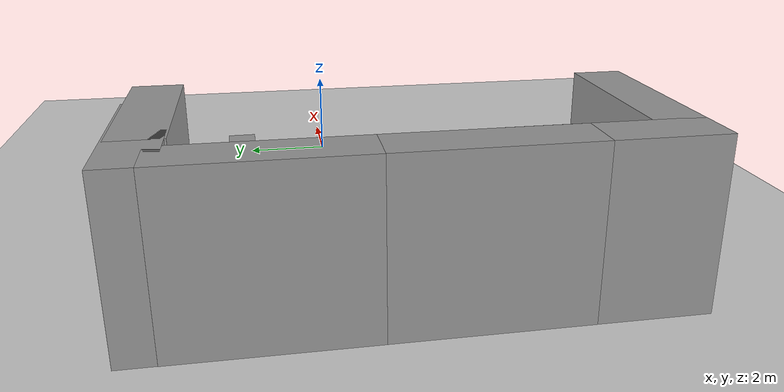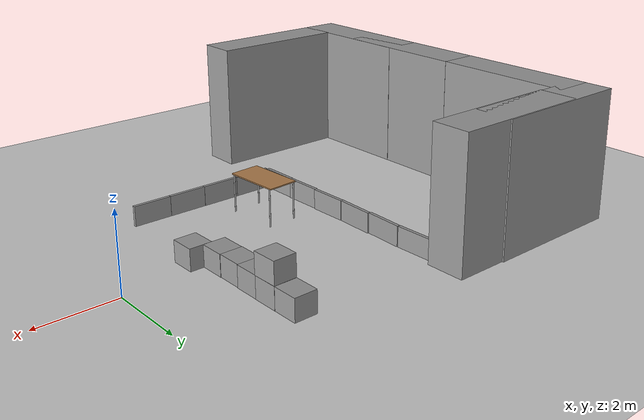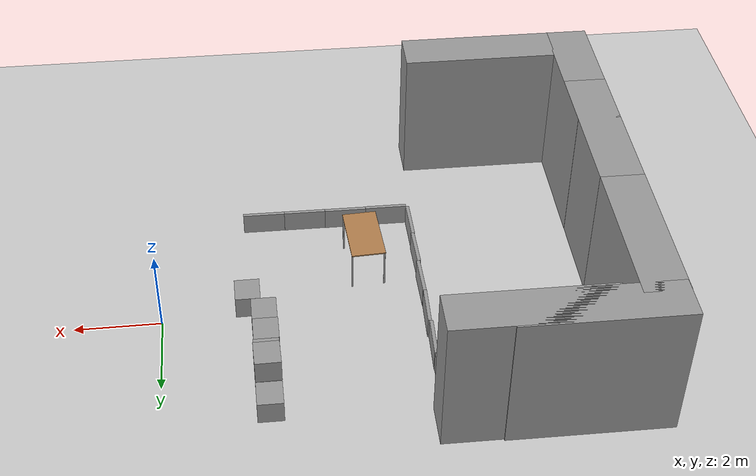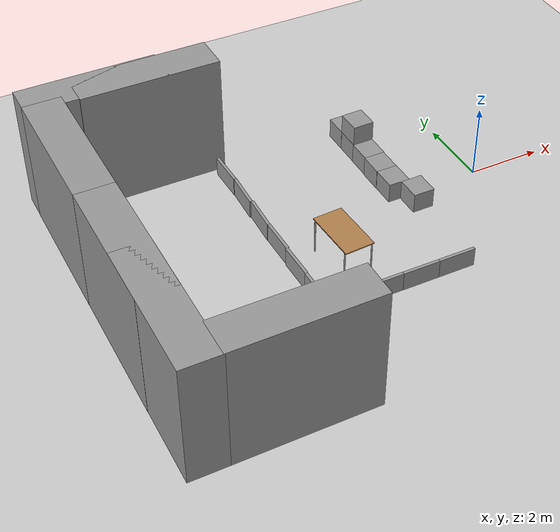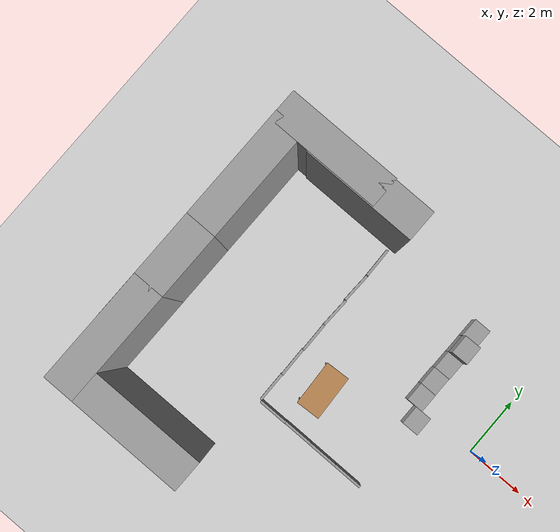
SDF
<sdf version="1.6">
 <world name="default">
  <model name="ground_plane">
   <static>1</static>
   <link name="link">
    <collision name="collision">
     <geometry><plane><normal>0 0 1</normal><size>100 100</size></plane></geometry>
     <surface>
      <contact><collide_bitmask>65535</collide_bitmask></contact>
      <friction><ode><mu>100</mu><mu2>50</mu2></ode></friction>
     </surface>
    </collision>
    <visual name="visual">
     <cast_shadows>0</cast_shadows>
     <geometry><plane><normal>0 0 1</normal><size>100 100</size></plane></geometry>
     <material>
      <script><uri>file://media/materials/scripts/gazebo.material</uri><name>Gazebo/Grey</name></script>
     </material>
    </visual>
   </link>
  </model>
  <model name="panel_0">
   <link name="link">
    <inertial>
     <mass>0.0428479</mass>
     <inertia>
      <ixx>0.00456249</ixx>
      <ixy>0</ixy>
      <ixz>0</ixz>
      <iyy>0.00101543</iyy>
      <iyz>0</iyz>
      <izz>0.00359426</izz>
     </inertia>
    </inertial>
    <pose>-0.996065 -0.479892 0.260289 0 -0 0</pose>
    <visual name="visual">
     <geometry><box><size>0.081299 1 0.527041</size></box></geometry>
     <material>
      <script><name>Gazebo/Grey</name><uri>file://media/materials/scripts/gazebo.material</uri></script>
      <emissive>0 0 0 1</emissive>
      <shader type="vertex"><normal_map>__default__</normal_map></shader>
      <ambient>0.3 0.3 0.3 1</ambient>
      <diffuse>0.7 0.7 0.7 1</diffuse>
      <specular>0.01 0.01 0.01 1</specular>
     </material>
    </visual>
    <collision name="collision">
     <geometry><box><size>0.081299 1 0.527041</size></box></geometry>
     <surface>
      <friction>
       <ode><mu>1</mu><mu2>1</mu2><fdir1>0 0 0</fdir1><slip1>0</slip1><slip2>0</slip2></ode>
       <torsional>
        <coefficient>1</coefficient>
        <patch_radius>0</patch_radius>
        <surface_radius>0</surface_radius>
        <use_patch_radius>1</use_patch_radius>
        <ode><slip>0</slip></ode>
       </torsional>
      </friction>
      <bounce><restitution_coefficient>0</restitution_coefficient><threshold>1e+06</threshold></bounce>
      <contact>
       <collide_without_contact>0</collide_without_contact>
       <collide_without_contact_bitmask>1</collide_without_contact_bitmask>
       <collide_bitmask>1</collide_bitmask>
       <ode>
        <soft_cfm>0</soft_cfm>
        <soft_erp>0.2</soft_erp>
        <kp>1e+13</kp>
        <kd>1</kd>
        <max_vel>0.01</max_vel>
        <min_depth>0</min_depth>
       </ode>
       <bullet>
        <split_impulse>1</split_impulse>
        <split_impulse_penetration_threshold>-0.01</split_impulse_penetration_threshold>
        <soft_cfm>0</soft_cfm>
        <soft_erp>0.2</soft_erp>
        <kp>1e+13</kp>
        <kd>1</kd>
       </bullet>
      </contact>
     </surface>
    </collision>
   </link>
   <static>0</static>
   <allow_auto_disable>0</allow_auto_disable>
   <pose>-5.05418 -0.988597 0.003222 -1e-06 0 0.022855</pose>
  </model>
  <model name="panel">
   <link name="link">
    <inertial>
     <mass>0.0428479</mass>
     <inertia>
      <ixx>0.00456249</ixx>
      <ixy>0</ixy>
      <ixz>0</ixz>
      <iyy>0.00101543</iyy>
      <iyz>0</iyz>
      <izz>0.00359426</izz>
     </inertia>
    </inertial>
    <pose>-0.996065 -0.479892 0.260289 0 -0 0</pose>
    <visual name="visual">
     <geometry><box><size>0.081299 1 0.527041</size></box></geometry>
     <material>
      <script><name>Gazebo/Grey</name><uri>file://media/materials/scripts/gazebo.material</uri></script>
      <emissive>0 0 0 1</emissive>
      <shader type="vertex"><normal_map>__default__</normal_map></shader>
      <ambient>0.3 0.3 0.3 1</ambient>
      <diffuse>0.7 0.7 0.7 1</diffuse>
      <specular>0.01 0.01 0.01 1</specular>
     </material>
    </visual>
    <collision name="collision">
     <geometry><box><size>0.081299 1 0.527041</size></box></geometry>
     <surface>
      <friction>
       <ode><mu>1</mu><mu2>1</mu2><fdir1>0 0 0</fdir1><slip1>0</slip1><slip2>0</slip2></ode>
       <torsional>
        <coefficient>1</coefficient>
        <patch_radius>0</patch_radius>
        <surface_radius>0</surface_radius>
        <use_patch_radius>1</use_patch_radius>
        <ode><slip>0</slip></ode>
       </torsional>
      </friction>
      <bounce><restitution_coefficient>0</restitution_coefficient><threshold>1e+06</threshold></bounce>
      <contact>
       <collide_without_contact>0</collide_without_contact>
       <collide_without_contact_bitmask>1</collide_without_contact_bitmask>
       <collide_bitmask>1</collide_bitmask>
       <ode>
        <soft_cfm>0</soft_cfm>
        <soft_erp>0.2</soft_erp>
        <kp>1e+13</kp>
        <kd>1</kd>
        <max_vel>0.01</max_vel>
        <min_depth>0</min_depth>
       </ode>
       <bullet>
        <split_impulse>1</split_impulse>
        <split_impulse_penetration_threshold>-0.01</split_impulse_penetration_threshold>
        <soft_cfm>0</soft_cfm>
        <soft_erp>0.2</soft_erp>
        <kp>1e+13</kp>
        <kd>1</kd>
       </bullet>
      </contact>
     </surface>
    </collision>
   </link>
   <static>0</static>
   <allow_auto_disable>0</allow_auto_disable>
   <pose>-5.04883 0.006609 0.003227 -4e-06 -0 0.017153</pose>
  </model>
  <model name="panel_1">
   <link name="link">
    <inertial>
     <mass>0.0428479</mass>
     <inertia>
      <ixx>0.00456249</ixx>
      <ixy>0</ixy>
      <ixz>0</ixz>
      <iyy>0.00101543</iyy>
      <iyz>0</iyz>
      <izz>0.00359426</izz>
     </inertia>
    </inertial>
    <pose>-0.996065 -0.479892 0.260289 0 -0 0</pose>
    <visual name="visual">
     <geometry><box><size>0.081299 1 0.527041</size></box></geometry>
     <material>
      <script><name>Gazebo/Grey</name><uri>file://media/materials/scripts/gazebo.material</uri></script>
      <emissive>0 0 0 1</emissive>
      <shader type="vertex"><normal_map>__default__</normal_map></shader>
      <ambient>0.3 0.3 0.3 1</ambient>
      <diffuse>0.7 0.7 0.7 1</diffuse>
      <specular>0.01 0.01 0.01 1</specular>
     </material>
    </visual>
    <collision name="collision">
     <geometry><box><size>0.081299 1 0.527041</size></box></geometry>
     <surface>
      <friction>
       <ode><mu>1</mu><mu2>1</mu2><fdir1>0 0 0</fdir1><slip1>0</slip1><slip2>0</slip2></ode>
       <torsional>
        <coefficient>1</coefficient>
        <patch_radius>0</patch_radius>
        <surface_radius>0</surface_radius>
        <use_patch_radius>1</use_patch_radius>
        <ode><slip>0</slip></ode>
       </torsional>
      </friction>
      <bounce><restitution_coefficient>0</restitution_coefficient><threshold>1e+06</threshold></bounce>
      <contact>
       <collide_without_contact>0</collide_without_contact>
       <collide_without_contact_bitmask>1</collide_without_contact_bitmask>
       <collide_bitmask>1</collide_bitmask>
       <ode>
        <soft_cfm>0</soft_cfm>
        <soft_erp>0.2</soft_erp>
        <kp>1e+13</kp>
        <kd>1</kd>
        <max_vel>0.01</max_vel>
        <min_depth>0</min_depth>
       </ode>
       <bullet>
        <split_impulse>1</split_impulse>
        <split_impulse_penetration_threshold>-0.01</split_impulse_penetration_threshold>
        <soft_cfm>0</soft_cfm>
        <soft_erp>0.2</soft_erp>
        <kp>1e+13</kp>
        <kd>1</kd>
       </bullet>
      </contact>
     </surface>
    </collision>
   </link>
   <static>0</static>
   <allow_auto_disable>0</allow_auto_disable>
   <pose>-5.02835 0.9633 0.003231 0 0 -0.027927</pose>
  </model>
  <model name="panel_2">
   <link name="link">
    <inertial>
     <mass>0.0428479</mass>
     <inertia>
      <ixx>0.00456249</ixx>
      <ixy>0</ixy>
      <ixz>0</ixz>
      <iyy>0.00101543</iyy>
      <iyz>0</iyz>
      <izz>0.00359426</izz>
     </inertia>
    </inertial>
    <pose>-0.996065 -0.479892 0.260289 0 -0 0</pose>
    <visual name="visual">
     <geometry><box><size>0.081299 1 0.527041</size></box></geometry>
     <material>
      <script><name>Gazebo/Grey</name><uri>file://media/materials/scripts/gazebo.material</uri></script>
      <emissive>0 0 0 1</emissive>
      <shader type="vertex"><normal_map>__default__</normal_map></shader>
      <ambient>0.3 0.3 0.3 1</ambient>
      <diffuse>0.7 0.7 0.7 1</diffuse>
      <specular>0.01 0.01 0.01 1</specular>
     </material>
    </visual>
    <collision name="collision">
     <geometry><box><size>0.081299 1 0.527041</size></box></geometry>
     <surface>
      <friction>
       <ode><mu>1</mu><mu2>1</mu2><fdir1>0 0 0</fdir1><slip1>0</slip1><slip2>0</slip2></ode>
       <torsional>
        <coefficient>1</coefficient>
        <patch_radius>0</patch_radius>
        <surface_radius>0</surface_radius>
        <use_patch_radius>1</use_patch_radius>
        <ode><slip>0</slip></ode>
       </torsional>
      </friction>
      <bounce><restitution_coefficient>0</restitution_coefficient><threshold>1e+06</threshold></bounce>
      <contact>
       <collide_without_contact>0</collide_without_contact>
       <collide_without_contact_bitmask>1</collide_without_contact_bitmask>
       <collide_bitmask>1</collide_bitmask>
       <ode>
        <soft_cfm>0</soft_cfm>
        <soft_erp>0.2</soft_erp>
        <kp>1e+13</kp>
        <kd>1</kd>
        <max_vel>0.01</max_vel>
        <min_depth>0</min_depth>
       </ode>
       <bullet>
        <split_impulse>1</split_impulse>
        <split_impulse_penetration_threshold>-0.01</split_impulse_penetration_threshold>
        <soft_cfm>0</soft_cfm>
        <soft_erp>0.2</soft_erp>
        <kp>1e+13</kp>
        <kd>1</kd>
       </bullet>
      </contact>
     </surface>
    </collision>
   </link>
   <static>0</static>
   <allow_auto_disable>0</allow_auto_disable>
   <pose>-5.0306 1.96587 0.003233 0 -1e-06 -0.029752</pose>
  </model>
  <model name="panel_3">
   <link name="link">
    <inertial>
     <mass>0.0428479</mass>
     <inertia>
      <ixx>0.00456249</ixx>
      <ixy>0</ixy>
      <ixz>0</ixz>
      <iyy>0.00101543</iyy>
      <iyz>0</iyz>
      <izz>0.00359426</izz>
     </inertia>
    </inertial>
    <pose>-0.996065 -0.479892 0.260289 0 -0 0</pose>
    <visual name="visual">
     <geometry><box><size>0.081299 1 0.527041</size></box></geometry>
     <material>
      <script><name>Gazebo/Grey</name><uri>file://media/materials/scripts/gazebo.material</uri></script>
      <emissive>0 0 0 1</emissive>
      <shader type="vertex"><normal_map>__default__</normal_map></shader>
      <ambient>0.3 0.3 0.3 1</ambient>
      <diffuse>0.7 0.7 0.7 1</diffuse>
      <specular>0.01 0.01 0.01 1</specular>
     </material>
    </visual>
    <collision name="collision">
     <geometry><box><size>0.081299 1 0.527041</size></box></geometry>
     <surface>
      <friction>
       <ode><mu>1</mu><mu2>1</mu2><fdir1>0 0 0</fdir1><slip1>0</slip1><slip2>0</slip2></ode>
       <torsional>
        <coefficient>1</coefficient>
        <patch_radius>0</patch_radius>
        <surface_radius>0</surface_radius>
        <use_patch_radius>1</use_patch_radius>
        <ode><slip>0</slip></ode>
       </torsional>
      </friction>
      <bounce><restitution_coefficient>0</restitution_coefficient><threshold>1e+06</threshold></bounce>
      <contact>
       <collide_without_contact>0</collide_without_contact>
       <collide_without_contact_bitmask>1</collide_without_contact_bitmask>
       <collide_bitmask>1</collide_bitmask>
       <ode>
        <soft_cfm>0</soft_cfm>
        <soft_erp>0.2</soft_erp>
        <kp>1e+13</kp>
        <kd>1</kd>
        <max_vel>0.01</max_vel>
        <min_depth>0</min_depth>
       </ode>
       <bullet>
        <split_impulse>1</split_impulse>
        <split_impulse_penetration_threshold>-0.01</split_impulse_penetration_threshold>
        <soft_cfm>0</soft_cfm>
        <soft_erp>0.2</soft_erp>
        <kp>1e+13</kp>
        <kd>1</kd>
       </bullet>
      </contact>
     </surface>
    </collision>
   </link>
   <static>0</static>
   <allow_auto_disable>0</allow_auto_disable>
   <pose>-5.0627 3.03614 0.003232 0 -0 0.026347</pose>
  </model>
  <model name="panel_4">
   <link name="link">
    <inertial>
     <mass>0.0428479</mass>
     <inertia>
      <ixx>0.00456249</ixx>
      <ixy>0</ixy>
      <ixz>0</ixz>
      <iyy>0.00101543</iyy>
      <iyz>0</iyz>
      <izz>0.00359426</izz>
     </inertia>
    </inertial>
    <pose>-0.996065 -0.479892 0.260289 0 -0 0</pose>
    <visual name="visual">
     <geometry><box><size>0.081299 1 0.527041</size></box></geometry>
     <material>
      <script><name>Gazebo/Grey</name><uri>file://media/materials/scripts/gazebo.material</uri></script>
      <emissive>0 0 0 1</emissive>
      <shader type="vertex"><normal_map>__default__</normal_map></shader>
      <ambient>0.3 0.3 0.3 1</ambient>
      <diffuse>0.7 0.7 0.7 1</diffuse>
      <specular>0.01 0.01 0.01 1</specular>
     </material>
    </visual>
    <collision name="collision">
     <geometry><box><size>0.081299 1 0.527041</size></box></geometry>
     <surface>
      <friction>
       <ode><mu>1</mu><mu2>1</mu2><fdir1>0 0 0</fdir1><slip1>0</slip1><slip2>0</slip2></ode>
       <torsional>
        <coefficient>1</coefficient>
        <patch_radius>0</patch_radius>
        <surface_radius>0</surface_radius>
        <use_patch_radius>1</use_patch_radius>
        <ode><slip>0</slip></ode>
       </torsional>
      </friction>
      <bounce><restitution_coefficient>0</restitution_coefficient><threshold>1e+06</threshold></bounce>
      <contact>
       <collide_without_contact>0</collide_without_contact>
       <collide_without_contact_bitmask>1</collide_without_contact_bitmask>
       <collide_bitmask>1</collide_bitmask>
       <ode>
        <soft_cfm>0</soft_cfm>
        <soft_erp>0.2</soft_erp>
        <kp>1e+13</kp>
        <kd>1</kd>
        <max_vel>0.01</max_vel>
        <min_depth>0</min_depth>
       </ode>
       <bullet>
        <split_impulse>1</split_impulse>
        <split_impulse_penetration_threshold>-0.01</split_impulse_penetration_threshold>
        <soft_cfm>0</soft_cfm>
        <soft_erp>0.2</soft_erp>
        <kp>1e+13</kp>
        <kd>1</kd>
       </bullet>
      </contact>
     </surface>
    </collision>
   </link>
   <static>0</static>
   <allow_auto_disable>0</allow_auto_disable>
   <pose>-5.04525 -1.99765 0.003231 4e-06 0 0.014171</pose>
  </model>
  <model name="panel_11">
   <link name="link">
    <inertial>
     <mass>0.0428479</mass>
     <inertia>
      <ixx>0.00456249</ixx>
      <ixy>0</ixy>
      <ixz>0</ixz>
      <iyy>0.00101543</iyy>
      <iyz>0</iyz>
      <izz>0.00359426</izz>
     </inertia>
    </inertial>
    <pose>-0.996065 -0.479892 0.260289 0 -0 0</pose>
    <visual name="visual">
     <geometry><box><size>0.081299 1 0.527041</size></box></geometry>
     <material>
      <script><name>Gazebo/Grey</name><uri>file://media/materials/scripts/gazebo.material</uri></script>
      <emissive>0 0 0 1</emissive>
      <shader type="vertex"><normal_map>__default__</normal_map></shader>
      <ambient>0.3 0.3 0.3 1</ambient>
      <diffuse>0.7 0.7 0.7 1</diffuse>
      <specular>0.01 0.01 0.01 1</specular>
     </material>
    </visual>
    <collision name="collision">
     <geometry><box><size>0.081299 1 0.527041</size></box></geometry>
     <surface>
      <friction>
       <ode><mu>1</mu><mu2>1</mu2><fdir1>0 0 0</fdir1><slip1>0</slip1><slip2>0</slip2></ode>
       <torsional>
        <coefficient>1</coefficient>
        <patch_radius>0</patch_radius>
        <surface_radius>0</surface_radius>
        <use_patch_radius>1</use_patch_radius>
        <ode><slip>0</slip></ode>
       </torsional>
      </friction>
      <bounce><restitution_coefficient>0</restitution_coefficient><threshold>1e+06</threshold></bounce>
      <contact>
       <collide_without_contact>0</collide_without_contact>
       <collide_without_contact_bitmask>1</collide_without_contact_bitmask>
       <collide_bitmask>1</collide_bitmask>
       <ode>
        <soft_cfm>0</soft_cfm>
        <soft_erp>0.2</soft_erp>
        <kp>1e+13</kp>
        <kd>1</kd>
        <max_vel>0.01</max_vel>
        <min_depth>0</min_depth>
       </ode>
       <bullet>
        <split_impulse>1</split_impulse>
        <split_impulse_penetration_threshold>-0.01</split_impulse_penetration_threshold>
        <soft_cfm>0</soft_cfm>
        <soft_erp>0.2</soft_erp>
        <kp>1e+13</kp>
        <kd>1</kd>
       </bullet>
      </contact>
     </surface>
    </collision>
   </link>
   <static>0</static>
   <allow_auto_disable>0</allow_auto_disable>
   <pose>-4.97363 -2.03274 0.003222 -1e-05 -0 1.5692</pose>
  </model>
  <model name="panel_12">
   <link name="link">
    <inertial>
     <mass>0.0428479</mass>
     <inertia>
      <ixx>0.00456249</ixx>
      <ixy>0</ixy>
      <ixz>0</ixz>
      <iyy>0.00101543</iyy>
      <iyz>0</iyz>
      <izz>0.00359426</izz>
     </inertia>
    </inertial>
    <pose>-0.996065 -0.479892 0.260289 0 -0 0</pose>
    <visual name="visual">
     <geometry><box><size>0.081299 1 0.527041</size></box></geometry>
     <material>
      <script><name>Gazebo/Grey</name><uri>file://media/materials/scripts/gazebo.material</uri></script>
      <emissive>0 0 0 1</emissive>
      <shader type="vertex"><normal_map>__default__</normal_map></shader>
      <ambient>0.3 0.3 0.3 1</ambient>
      <diffuse>0.7 0.7 0.7 1</diffuse>
      <specular>0.01 0.01 0.01 1</specular>
     </material>
    </visual>
    <collision name="collision">
     <geometry><box><size>0.081299 1 0.527041</size></box></geometry>
     <surface>
      <friction>
       <ode><mu>1</mu><mu2>1</mu2><fdir1>0 0 0</fdir1><slip1>0</slip1><slip2>0</slip2></ode>
       <torsional>
        <coefficient>1</coefficient>
        <patch_radius>0</patch_radius>
        <surface_radius>0</surface_radius>
        <use_patch_radius>1</use_patch_radius>
        <ode><slip>0</slip></ode>
       </torsional>
      </friction>
      <bounce><restitution_coefficient>0</restitution_coefficient><threshold>1e+06</threshold></bounce>
      <contact>
       <collide_without_contact>0</collide_without_contact>
       <collide_without_contact_bitmask>1</collide_without_contact_bitmask>
       <collide_bitmask>1</collide_bitmask>
       <ode>
        <soft_cfm>0</soft_cfm>
        <soft_erp>0.2</soft_erp>
        <kp>1e+13</kp>
        <kd>1</kd>
        <max_vel>0.01</max_vel>
        <min_depth>0</min_depth>
       </ode>
       <bullet>
        <split_impulse>1</split_impulse>
        <split_impulse_penetration_threshold>-0.01</split_impulse_penetration_threshold>
        <soft_cfm>0</soft_cfm>
        <soft_erp>0.2</soft_erp>
        <kp>1e+13</kp>
        <kd>1</kd>
       </bullet>
      </contact>
     </surface>
    </collision>
   </link>
   <static>0</static>
   <allow_auto_disable>0</allow_auto_disable>
   <pose>-5.97519 -2.04045 0.003232 0 -1e-06 1.56998</pose>
  </model>
  <model name="wall_4_1_3_clone">
   <link name="link">
    <inertial>
     <mass>12.3337</mass>
     <inertia><ixx>12.5329</ixx><ixy>0</ixy><ixz>0</ixz><iyy>25.4731</iyy><iyz>0</iyz><izz>14.9958</izz></inertia>
    </inertial>
    <pose>-2.9941 -0.388092 1.21174 0 -0 0</pose>
    <visual name="visual">
     <geometry><box><size>3.68647 1 3.34571</size></box></geometry>
     <material>
      <script><name>Gazebo/Grey</name><uri>file://media/materials/scripts/gazebo.material</uri></script>
     </material>
    </visual>
    <collision name="collision">
     <geometry><box><size>3.68647 1 3.34571</size></box></geometry>
     <surface>
      <friction>
       <ode><mu>1</mu><mu2>1</mu2><fdir1>0 0 0</fdir1><slip1>0</slip1><slip2>0</slip2></ode>
       <torsional>
        <coefficient>1</coefficient>
        <patch_radius>0</patch_radius>
        <surface_radius>0</surface_radius>
        <use_patch_radius>1</use_patch_radius>
        <ode><slip>0</slip></ode>
       </torsional>
      </friction>
      <bounce><restitution_coefficient>0</restitution_coefficient><threshold>1e+06</threshold></bounce>
      <contact>
       <collide_without_contact>0</collide_without_contact>
       <collide_without_contact_bitmask>1</collide_without_contact_bitmask>
       <collide_bitmask>1</collide_bitmask>
       <ode>
        <soft_cfm>0</soft_cfm>
        <soft_erp>0.2</soft_erp>
        <kp>1e+13</kp>
        <kd>1</kd>
        <max_vel>0.01</max_vel>
        <min_depth>0</min_depth>
       </ode>
       <bullet>
        <split_impulse>1</split_impulse>
        <split_impulse_penetration_threshold>-0.01</split_impulse_penetration_threshold>
        <soft_cfm>0</soft_cfm>
        <soft_erp>0.2</soft_erp>
        <kp>1e+13</kp>
        <kd>1</kd>
       </bullet>
      </contact>
     </surface>
    </collision>
   </link>
   <static>1</static>
   <allow_auto_disable>0</allow_auto_disable>
   <pose>-4.65872 4.06004 0.5 0 -0 0</pose>
  </model>
  <model name="wall_4_1_3_clone_0">
   <link name="link">
    <inertial>
     <mass>12.3337</mass>
     <inertia><ixx>12.5329</ixx><ixy>0</ixy><ixz>0</ixz><iyy>25.4731</iyy><iyz>0</iyz><izz>14.9958</izz></inertia>
    </inertial>
    <pose>-2.9941 -0.388092 1.21174 0 -0 0</pose>
    <visual name="visual">
     <geometry><box><size>3.68647 1 3.34571</size></box></geometry>
     <material>
      <script><name>Gazebo/Grey</name><uri>file://media/materials/scripts/gazebo.material</uri></script>
     </material>
    </visual>
    <collision name="collision">
     <geometry><box><size>3.68647 1 3.34571</size></box></geometry>
     <surface>
      <friction>
       <ode><mu>1</mu><mu2>1</mu2><fdir1>0 0 0</fdir1><slip1>0</slip1><slip2>0</slip2></ode>
       <torsional>
        <coefficient>1</coefficient>
        <patch_radius>0</patch_radius>
        <surface_radius>0</surface_radius>
        <use_patch_radius>1</use_patch_radius>
        <ode><slip>0</slip></ode>
       </torsional>
      </friction>
      <bounce><restitution_coefficient>0</restitution_coefficient><threshold>1e+06</threshold></bounce>
      <contact>
       <collide_without_contact>0</collide_without_contact>
       <collide_without_contact_bitmask>1</collide_without_contact_bitmask>
       <collide_bitmask>1</collide_bitmask>
       <ode>
        <soft_cfm>0</soft_cfm>
        <soft_erp>0.2</soft_erp>
        <kp>1e+13</kp>
        <kd>1</kd>
        <max_vel>0.01</max_vel>
        <min_depth>0</min_depth>
       </ode>
       <bullet>
        <split_impulse>1</split_impulse>
        <split_impulse_penetration_threshold>-0.01</split_impulse_penetration_threshold>
        <soft_cfm>0</soft_cfm>
        <soft_erp>0.2</soft_erp>
        <kp>1e+13</kp>
        <kd>1</kd>
       </bullet>
      </contact>
     </surface>
    </collision>
   </link>
   <static>1</static>
   <allow_auto_disable>0</allow_auto_disable>
   <pose>-5.05797 -5.12167 0.5 0 -0 0</pose>
  </model>
  <model name="wall_4_1_3_clone_2">
   <link name="link">
    <inertial>
     <mass>12.3337</mass>
     <inertia><ixx>12.5329</ixx><ixy>0</ixy><ixz>0</ixz><iyy>25.4731</iyy><iyz>0</iyz><izz>14.9958</izz></inertia>
    </inertial>
    <pose>-2.9941 -0.388092 1.21174 0 -0 0</pose>
    <visual name="visual">
     <geometry><box><size>3.68647 1 3.34571</size></box></geometry>
     <material>
      <script><name>Gazebo/Grey</name><uri>file://media/materials/scripts/gazebo.material</uri></script>
     </material>
    </visual>
    <collision name="collision">
     <geometry><box><size>3.68647 1 3.34571</size></box></geometry>
     <surface>
      <friction>
       <ode><mu>1</mu><mu2>1</mu2><fdir1>0 0 0</fdir1><slip1>0</slip1><slip2>0</slip2></ode>
       <torsional>
        <coefficient>1</coefficient>
        <patch_radius>0</patch_radius>
        <surface_radius>0</surface_radius>
        <use_patch_radius>1</use_patch_radius>
        <ode><slip>0</slip></ode>
       </torsional>
      </friction>
      <bounce><restitution_coefficient>0</restitution_coefficient><threshold>1e+06</threshold></bounce>
      <contact>
       <collide_without_contact>0</collide_without_contact>
       <collide_without_contact_bitmask>1</collide_without_contact_bitmask>
       <collide_bitmask>1</collide_bitmask>
       <ode>
        <soft_cfm>0</soft_cfm>
        <soft_erp>0.2</soft_erp>
        <kp>1e+13</kp>
        <kd>1</kd>
        <max_vel>0.01</max_vel>
        <min_depth>0</min_depth>
       </ode>
       <bullet>
        <split_impulse>1</split_impulse>
        <split_impulse_penetration_threshold>-0.01</split_impulse_penetration_threshold>
        <soft_cfm>0</soft_cfm>
        <soft_erp>0.2</soft_erp>
        <kp>1e+13</kp>
        <kd>1</kd>
       </bullet>
      </contact>
     </surface>
    </collision>
   </link>
   <static>1</static>
   <allow_auto_disable>0</allow_auto_disable>
   <pose>-10.7382 4.65294 0.5 0 -0 1.56894</pose>
  </model>
  <model name="wall_4_1_3_clone_2_clone">
   <link name="link">
    <inertial>
     <mass>12.3337</mass>
     <inertia><ixx>12.5329</ixx><ixy>0</ixy><ixz>0</ixz><iyy>25.4731</iyy><iyz>0</iyz><izz>14.9958</izz></inertia>
    </inertial>
    <pose>-2.9941 -0.388092 1.21174 0 -0 0</pose>
    <visual name="visual">
     <geometry><box><size>3.68647 1 3.34571</size></box></geometry>
     <material>
      <script><name>Gazebo/Grey</name><uri>file://media/materials/scripts/gazebo.material</uri></script>
     </material>
    </visual>
    <collision name="collision">
     <geometry><box><size>3.68647 1 3.34571</size></box></geometry>
     <surface>
      <friction>
       <ode><mu>1</mu><mu2>1</mu2><fdir1>0 0 0</fdir1><slip1>0</slip1><slip2>0</slip2></ode>
       <torsional>
        <coefficient>1</coefficient>
        <patch_radius>0</patch_radius>
        <surface_radius>0</surface_radius>
        <use_patch_radius>1</use_patch_radius>
        <ode><slip>0</slip></ode>
       </torsional>
      </friction>
      <bounce><restitution_coefficient>0</restitution_coefficient><threshold>1e+06</threshold></bounce>
      <contact>
       <collide_without_contact>0</collide_without_contact>
       <collide_without_contact_bitmask>1</collide_without_contact_bitmask>
       <collide_bitmask>1</collide_bitmask>
       <ode>
        <soft_cfm>0</soft_cfm>
        <soft_erp>0.2</soft_erp>
        <kp>1e+13</kp>
        <kd>1</kd>
        <max_vel>0.01</max_vel>
        <min_depth>0</min_depth>
       </ode>
       <bullet>
        <split_impulse>1</split_impulse>
        <split_impulse_penetration_threshold>-0.01</split_impulse_penetration_threshold>
        <soft_cfm>0</soft_cfm>
        <soft_erp>0.2</soft_erp>
        <kp>1e+13</kp>
        <kd>1</kd>
       </bullet>
      </contact>
     </surface>
    </collision>
   </link>
   <static>1</static>
   <allow_auto_disable>0</allow_auto_disable>
   <pose>-10.743 0.966495 0.5 0 -0 1.56894</pose>
  </model>
  <model name="wall_4_1_3_clone_2_clone_0">
   <link name="link">
    <inertial>
     <mass>12.3337</mass>
     <inertia><ixx>12.5329</ixx><ixy>0</ixy><ixz>0</ixz><iyy>25.4731</iyy><iyz>0</iyz><izz>14.9958</izz></inertia>
    </inertial>
    <pose>-2.9941 -0.388092 1.21174 0 -0 0</pose>
    <visual name="visual">
     <geometry><box><size>3.68647 1 3.34571</size></box></geometry>
     <material>
      <script><name>Gazebo/Grey</name><uri>file://media/materials/scripts/gazebo.material</uri></script>
     </material>
    </visual>
    <collision name="collision">
     <geometry><box><size>3.68647 1 3.34571</size></box></geometry>
     <surface>
      <friction>
       <ode><mu>1</mu><mu2>1</mu2><fdir1>0 0 0</fdir1><slip1>0</slip1><slip2>0</slip2></ode>
       <torsional>
        <coefficient>1</coefficient>
        <patch_radius>0</patch_radius>
        <surface_radius>0</surface_radius>
        <use_patch_radius>1</use_patch_radius>
        <ode><slip>0</slip></ode>
       </torsional>
      </friction>
      <bounce><restitution_coefficient>0</restitution_coefficient><threshold>1e+06</threshold></bounce>
      <contact>
       <collide_without_contact>0</collide_without_contact>
       <collide_without_contact_bitmask>1</collide_without_contact_bitmask>
       <collide_bitmask>1</collide_bitmask>
       <ode>
        <soft_cfm>0</soft_cfm>
        <soft_erp>0.2</soft_erp>
        <kp>1e+13</kp>
        <kd>1</kd>
        <max_vel>0.01</max_vel>
        <min_depth>0</min_depth>
       </ode>
       <bullet>
        <split_impulse>1</split_impulse>
        <split_impulse_penetration_threshold>-0.01</split_impulse_penetration_threshold>
        <soft_cfm>0</soft_cfm>
        <soft_erp>0.2</soft_erp>
        <kp>1e+13</kp>
        <kd>1</kd>
       </bullet>
      </contact>
     </surface>
    </collision>
   </link>
   <static>1</static>
   <allow_auto_disable>0</allow_auto_disable>
   <pose>-10.7437 -1.1722 0.5 0 -0 1.56894</pose>
  </model>
  <model name="panel_14_clone_1_clone_clone_6">
   <link name="link">
    <inertial>
     <mass>0.0428479</mass>
     <inertia>
      <ixx>0.00456249</ixx>
      <ixy>0</ixy>
      <ixz>0</ixz>
      <iyy>0.00101543</iyy>
      <iyz>0</iyz>
      <izz>0.00359426</izz>
     </inertia>
    </inertial>
    <pose>-0.996065 -0.479892 0.260289 0 -0 0</pose>
    <visual name="visual">
     <geometry><box><size>0.081299 1 0.527041</size></box></geometry>
     <material>
      <script><name>Gazebo/Grey</name><uri>file://media/materials/scripts/gazebo.material</uri></script>
      <emissive>0 0 0 1</emissive>
      <shader type="vertex"><normal_map>__default__</normal_map></shader>
      <ambient>0.3 0.3 0.3 1</ambient>
      <diffuse>0.7 0.7 0.7 1</diffuse>
      <specular>0.01 0.01 0.01 1</specular>
     </material>
    </visual>
    <collision name="collision">
     <geometry><box><size>0.081299 1 0.527041</size></box></geometry>
     <surface>
      <friction>
       <ode><mu>1</mu><mu2>1</mu2><fdir1>0 0 0</fdir1><slip1>0</slip1><slip2>0</slip2></ode>
       <torsional>
        <coefficient>1</coefficient>
        <patch_radius>0</patch_radius>
        <surface_radius>0</surface_radius>
        <use_patch_radius>1</use_patch_radius>
        <ode><slip>0</slip></ode>
       </torsional>
      </friction>
      <bounce><restitution_coefficient>0</restitution_coefficient><threshold>1e+06</threshold></bounce>
      <contact>
       <collide_without_contact>0</collide_without_contact>
       <collide_without_contact_bitmask>1</collide_without_contact_bitmask>
       <collide_bitmask>1</collide_bitmask>
       <ode>
        <soft_cfm>0</soft_cfm>
        <soft_erp>0.2</soft_erp>
        <kp>1e+13</kp>
        <kd>1</kd>
        <max_vel>0.01</max_vel>
        <min_depth>0</min_depth>
       </ode>
       <bullet>
        <split_impulse>1</split_impulse>
        <split_impulse_penetration_threshold>-0.01</split_impulse_penetration_threshold>
        <soft_cfm>0</soft_cfm>
        <soft_erp>0.2</soft_erp>
        <kp>1e+13</kp>
        <kd>1</kd>
       </bullet>
      </contact>
     </surface>
    </collision>
   </link>
   <static>0</static>
   <allow_auto_disable>0</allow_auto_disable>
   <pose>-2.01789 -4.03611 0.003232 0 -1e-06 -1.57367</pose>
  </model>
  <model name="panel_14_clone_1_clone_clone_7">
   <link name="link">
    <inertial>
     <mass>0.0428479</mass>
     <inertia>
      <ixx>0.00456249</ixx>
      <ixy>0</ixy>
      <ixz>0</ixz>
      <iyy>0.00101543</iyy>
      <iyz>0</iyz>
      <izz>0.00359426</izz>
     </inertia>
    </inertial>
    <pose>-0.996065 -0.479892 0.260289 0 -0 0</pose>
    <visual name="visual">
     <geometry><box><size>0.081299 1 0.527041</size></box></geometry>
     <material>
      <script><name>Gazebo/Grey</name><uri>file://media/materials/scripts/gazebo.material</uri></script>
      <emissive>0 0 0 1</emissive>
      <shader type="vertex"><normal_map>__default__</normal_map></shader>
      <ambient>0.3 0.3 0.3 1</ambient>
      <diffuse>0.7 0.7 0.7 1</diffuse>
      <specular>0.01 0.01 0.01 1</specular>
     </material>
    </visual>
    <collision name="collision">
     <geometry><box><size>0.081299 1 0.527041</size></box></geometry>
     <surface>
      <friction>
       <ode><mu>1</mu><mu2>1</mu2><fdir1>0 0 0</fdir1><slip1>0</slip1><slip2>0</slip2></ode>
       <torsional>
        <coefficient>1</coefficient>
        <patch_radius>0</patch_radius>
        <surface_radius>0</surface_radius>
        <use_patch_radius>1</use_patch_radius>
        <ode><slip>0</slip></ode>
       </torsional>
      </friction>
      <bounce><restitution_coefficient>0</restitution_coefficient><threshold>1e+06</threshold></bounce>
      <contact>
       <collide_without_contact>0</collide_without_contact>
       <collide_without_contact_bitmask>1</collide_without_contact_bitmask>
       <collide_bitmask>1</collide_bitmask>
       <ode>
        <soft_cfm>0</soft_cfm>
        <soft_erp>0.2</soft_erp>
        <kp>1e+13</kp>
        <kd>1</kd>
        <max_vel>0.01</max_vel>
        <min_depth>0</min_depth>
       </ode>
       <bullet>
        <split_impulse>1</split_impulse>
        <split_impulse_penetration_threshold>-0.01</split_impulse_penetration_threshold>
        <soft_cfm>0</soft_cfm>
        <soft_erp>0.2</soft_erp>
        <kp>1e+13</kp>
        <kd>1</kd>
       </bullet>
      </contact>
     </surface>
    </collision>
   </link>
   <static>0</static>
   <allow_auto_disable>0</allow_auto_disable>
   <pose>-3.01873 -4.03314 0.003222 -1e-05 -1e-06 -1.57427</pose>
  </model>
  <model name="table">
   <static>1</static>
   <link name="link">
    <collision name="surface">
     <pose>0 0 1 0 -0 0</pose>
     <geometry><box><size>1.5 0.8 0.03</size></box></geometry>
     <surface><friction><ode><mu>0.6</mu><mu2>0.6</mu2></ode></friction></surface>
    </collision>
    <visual name="visual1">
     <pose>0 0 1 0 -0 0</pose>
     <geometry><box><size>1.5 0.8 0.03</size></box></geometry>
     <material>
      <script><uri>file://media/materials/scripts/gazebo.material</uri><name>Gazebo/Wood</name></script>
     </material>
    </visual>
    <collision name="front_left_leg">
     <pose>0.68 0.38 0.5 0 -0 0</pose>
     <geometry><cylinder><radius>0.02</radius><length>1</length></cylinder></geometry>
    </collision>
    <visual name="front_left_leg">
     <pose>0.68 0.38 0.5 0 -0 0</pose>
     <geometry><cylinder><radius>0.02</radius><length>1</length></cylinder></geometry>
     <material>
      <script><uri>file://media/materials/scripts/gazebo.material</uri><name>Gazebo/Grey</name></script>
     </material>
    </visual>
    <collision name="front_right_leg">
     <pose>0.68 -0.38 0.5 0 -0 0</pose>
     <geometry><cylinder><radius>0.02</radius><length>1</length></cylinder></geometry>
    </collision>
    <visual name="front_right_leg">
     <pose>0.68 -0.38 0.5 0 -0 0</pose>
     <geometry><cylinder><radius>0.02</radius><length>1</length></cylinder></geometry>
     <material>
      <script><uri>file://media/materials/scripts/gazebo.material</uri><name>Gazebo/Grey</name></script>
     </material>
    </visual>
    <collision name="back_right_leg">
     <pose>-0.68 -0.38 0.5 0 -0 0</pose>
     <geometry><cylinder><radius>0.02</radius><length>1</length></cylinder></geometry>
    </collision>
    <visual name="back_right_leg">
     <pose>-0.68 -0.38 0.5 0 -0 0</pose>
     <geometry><cylinder><radius>0.02</radius><length>1</length></cylinder></geometry>
     <material>
      <script><uri>file://media/materials/scripts/gazebo.material</uri><name>Gazebo/Grey</name></script>
     </material>
    </visual>
    <collision name="back_left_leg">
     <pose>-0.68 0.38 0.5 0 -0 0</pose>
     <geometry><cylinder><radius>0.02</radius><length>1</length></cylinder></geometry>
    </collision>
    <visual name="back_left_leg">
     <pose>-0.68 0.38 0.5 0 -0 0</pose>
     <geometry><cylinder><radius>0.02</radius><length>1</length></cylinder></geometry>
     <material>
      <script><uri>file://media/materials/scripts/gazebo.material</uri><name>Gazebo/Grey</name></script>
     </material>
    </visual>
   </link>
   <pose>-4.7979 -1.52618 0 0 0 -1.5144</pose>
  </model>
  <model name="box_level5_clone_4">
   <link name="link">
    <inertial>
     <mass>0.207385</mass>
     <inertia>
      <ixx>0.0125184</ixx>
      <ixy>0</ixy>
      <ixz>0</ixz>
      <iyy>0.0111102</iyy>
      <iyz>0</iyz>
      <izz>0.0130087</izz>
     </inertia>
    </inertial>
    <visual name="visual">
     <geometry><box><size>0.579331 0.645836 0.554302</size></box></geometry>
     <material>
      <script><name>Gazebo/Grey</name><uri>file://media/materials/scripts/gazebo.material</uri></script>
     </material>
    </visual>
    <collision name="collision">
     <geometry><box><size>0.579331 0.645836 0.554302</size></box></geometry>
     <surface>
      <friction>
       <ode><mu>1</mu><mu2>1</mu2><fdir1>0 0 0</fdir1><slip1>0</slip1><slip2>0</slip2></ode>
       <torsional>
        <coefficient>1</coefficient>
        <patch_radius>0</patch_radius>
        <surface_radius>0</surface_radius>
        <use_patch_radius>1</use_patch_radius>
        <ode><slip>0</slip></ode>
       </torsional>
      </friction>
      <bounce><restitution_coefficient>0</restitution_coefficient><threshold>1e+06</threshold></bounce>
      <contact>
       <collide_without_contact>0</collide_without_contact>
       <collide_without_contact_bitmask>1</collide_without_contact_bitmask>
       <collide_bitmask>1</collide_bitmask>
       <ode>
        <soft_cfm>0</soft_cfm>
        <soft_erp>0.2</soft_erp>
        <kp>1e+13</kp>
        <kd>1</kd>
        <max_vel>0.01</max_vel>
        <min_depth>0</min_depth>
       </ode>
       <bullet>
        <split_impulse>1</split_impulse>
        <split_impulse_penetration_threshold>-0.01</split_impulse_penetration_threshold>
        <soft_cfm>0</soft_cfm>
        <soft_erp>0.2</soft_erp>
        <kp>1e+13</kp>
        <kd>1</kd>
       </bullet>
      </contact>
     </surface>
    </collision>
   </link>
   <static>0</static>
   <pose>-2.33165 2.1941 0.831453 -0 1e-06 0.017543</pose>
  </model>
  <model name="box_level5_clone_5">
   <link name="link">
    <inertial>
     <mass>0.207385</mass>
     <inertia>
      <ixx>0.0125184</ixx>
      <ixy>0</ixy>
      <ixz>0</ixz>
      <iyy>0.0111102</iyy>
      <iyz>0</iyz>
      <izz>0.0130087</izz>
     </inertia>
    </inertial>
    <visual name="visual">
     <geometry><box><size>0.579331 0.645836 0.554302</size></box></geometry>
     <material>
      <script><name>Gazebo/Grey</name><uri>file://media/materials/scripts/gazebo.material</uri></script>
     </material>
    </visual>
    <collision name="collision">
     <geometry><box><size>0.579331 0.645836 0.554302</size></box></geometry>
     <surface>
      <friction>
       <ode><mu>1</mu><mu2>1</mu2><fdir1>0 0 0</fdir1><slip1>0</slip1><slip2>0</slip2></ode>
       <torsional>
        <coefficient>1</coefficient>
        <patch_radius>0</patch_radius>
        <surface_radius>0</surface_radius>
        <use_patch_radius>1</use_patch_radius>
        <ode><slip>0</slip></ode>
       </torsional>
      </friction>
      <bounce><restitution_coefficient>0</restitution_coefficient><threshold>1e+06</threshold></bounce>
      <contact>
       <collide_without_contact>0</collide_without_contact>
       <collide_without_contact_bitmask>1</collide_without_contact_bitmask>
       <collide_bitmask>1</collide_bitmask>
       <ode>
        <soft_cfm>0</soft_cfm>
        <soft_erp>0.2</soft_erp>
        <kp>1e+13</kp>
        <kd>1</kd>
        <max_vel>0.01</max_vel>
        <min_depth>0</min_depth>
       </ode>
       <bullet>
        <split_impulse>1</split_impulse>
        <split_impulse_penetration_threshold>-0.01</split_impulse_penetration_threshold>
        <soft_cfm>0</soft_cfm>
        <soft_erp>0.2</soft_erp>
        <kp>1e+13</kp>
        <kd>1</kd>
       </bullet>
      </contact>
     </surface>
    </collision>
   </link>
   <static>0</static>
   <pose>-2.33419 1.55852 0.277151 0 1e-06 0.00257</pose>
  </model>
  <model name="box_level5_clone_6">
   <link name="link">
    <inertial>
     <mass>0.207385</mass>
     <inertia>
      <ixx>0.0125184</ixx>
      <ixy>0</ixy>
      <ixz>0</ixz>
      <iyy>0.0111102</iyy>
      <iyz>0</iyz>
      <izz>0.0130087</izz>
     </inertia>
    </inertial>
    <visual name="visual">
     <geometry><box><size>0.579331 0.645836 0.554302</size></box></geometry>
     <material>
      <script><name>Gazebo/Grey</name><uri>file://media/materials/scripts/gazebo.material</uri></script>
     </material>
    </visual>
    <collision name="collision">
     <geometry><box><size>0.579331 0.645836 0.554302</size></box></geometry>
     <surface>
      <friction>
       <ode><mu>1</mu><mu2>1</mu2><fdir1>0 0 0</fdir1><slip1>0</slip1><slip2>0</slip2></ode>
       <torsional>
        <coefficient>1</coefficient>
        <patch_radius>0</patch_radius>
        <surface_radius>0</surface_radius>
        <use_patch_radius>1</use_patch_radius>
        <ode><slip>0</slip></ode>
       </torsional>
      </friction>
      <bounce><restitution_coefficient>0</restitution_coefficient><threshold>1e+06</threshold></bounce>
      <contact>
       <collide_without_contact>0</collide_without_contact>
       <collide_without_contact_bitmask>1</collide_without_contact_bitmask>
       <collide_bitmask>1</collide_bitmask>
       <ode>
        <soft_cfm>0</soft_cfm>
        <soft_erp>0.2</soft_erp>
        <kp>1e+13</kp>
        <kd>1</kd>
        <max_vel>0.01</max_vel>
        <min_depth>0</min_depth>
       </ode>
       <bullet>
        <split_impulse>1</split_impulse>
        <split_impulse_penetration_threshold>-0.01</split_impulse_penetration_threshold>
        <soft_cfm>0</soft_cfm>
        <soft_erp>0.2</soft_erp>
        <kp>1e+13</kp>
        <kd>1</kd>
       </bullet>
      </contact>
     </surface>
    </collision>
   </link>
   <static>0</static>
   <pose>-2.34586 0.912451 0.277151 0 -0 0.001973</pose>
  </model>
  <model name="box_level5_clone_7">
   <link name="link">
    <inertial>
     <mass>0.207385</mass>
     <inertia>
      <ixx>0.0125184</ixx>
      <ixy>0</ixy>
      <ixz>0</ixz>
      <iyy>0.0111102</iyy>
      <iyz>0</iyz>
      <izz>0.0130087</izz>
     </inertia>
    </inertial>
    <visual name="visual">
     <geometry><box><size>0.579331 0.645836 0.554302</size></box></geometry>
     <material>
      <script><name>Gazebo/Grey</name><uri>file://media/materials/scripts/gazebo.material</uri></script>
     </material>
    </visual>
    <collision name="collision">
     <geometry><box><size>0.579331 0.645836 0.554302</size></box></geometry>
     <surface>
      <friction>
       <ode><mu>1</mu><mu2>1</mu2><fdir1>0 0 0</fdir1><slip1>0</slip1><slip2>0</slip2></ode>
       <torsional>
        <coefficient>1</coefficient>
        <patch_radius>0</patch_radius>
        <surface_radius>0</surface_radius>
        <use_patch_radius>1</use_patch_radius>
        <ode><slip>0</slip></ode>
       </torsional>
      </friction>
      <bounce><restitution_coefficient>0</restitution_coefficient><threshold>1e+06</threshold></bounce>
      <contact>
       <collide_without_contact>0</collide_without_contact>
       <collide_without_contact_bitmask>1</collide_without_contact_bitmask>
       <collide_bitmask>1</collide_bitmask>
       <ode>
        <soft_cfm>0</soft_cfm>
        <soft_erp>0.2</soft_erp>
        <kp>1e+13</kp>
        <kd>1</kd>
        <max_vel>0.01</max_vel>
        <min_depth>0</min_depth>
       </ode>
       <bullet>
        <split_impulse>1</split_impulse>
        <split_impulse_penetration_threshold>-0.01</split_impulse_penetration_threshold>
        <soft_cfm>0</soft_cfm>
        <soft_erp>0.2</soft_erp>
        <kp>1e+13</kp>
        <kd>1</kd>
       </bullet>
      </contact>
     </surface>
    </collision>
   </link>
   <static>0</static>
   <pose>-2.33679 0.266627 0.277151 0 -0 0.001973</pose>
  </model>
  <model name="box_level5_clone_8">
   <link name="link">
    <inertial>
     <mass>0.207385</mass>
     <inertia>
      <ixx>0.0125184</ixx>
      <ixy>0</ixy>
      <ixz>0</ixz>
      <iyy>0.0111102</iyy>
      <iyz>0</iyz>
      <izz>0.0130087</izz>
     </inertia>
    </inertial>
    <visual name="visual">
     <geometry><box><size>0.579331 0.645836 0.554302</size></box></geometry>
     <material>
      <script><name>Gazebo/Grey</name><uri>file://media/materials/scripts/gazebo.material</uri></script>
     </material>
    </visual>
    <collision name="collision">
     <geometry><box><size>0.579331 0.645836 0.554302</size></box></geometry>
     <surface>
      <friction>
       <ode><mu>1</mu><mu2>1</mu2><fdir1>0 0 0</fdir1><slip1>0</slip1><slip2>0</slip2></ode>
       <torsional>
        <coefficient>1</coefficient>
        <patch_radius>0</patch_radius>
        <surface_radius>0</surface_radius>
        <use_patch_radius>1</use_patch_radius>
        <ode><slip>0</slip></ode>
       </torsional>
      </friction>
      <bounce><restitution_coefficient>0</restitution_coefficient><threshold>1e+06</threshold></bounce>
      <contact>
       <collide_without_contact>0</collide_without_contact>
       <collide_without_contact_bitmask>1</collide_without_contact_bitmask>
       <collide_bitmask>1</collide_bitmask>
       <ode>
        <soft_cfm>0</soft_cfm>
        <soft_erp>0.2</soft_erp>
        <kp>1e+13</kp>
        <kd>1</kd>
        <max_vel>0.01</max_vel>
        <min_depth>0</min_depth>
       </ode>
       <bullet>
        <split_impulse>1</split_impulse>
        <split_impulse_penetration_threshold>-0.01</split_impulse_penetration_threshold>
        <soft_cfm>0</soft_cfm>
        <soft_erp>0.2</soft_erp>
        <kp>1e+13</kp>
        <kd>1</kd>
       </bullet>
      </contact>
     </surface>
    </collision>
   </link>
   <static>0</static>
   <pose>-1.98323 -0.378194 0.277148 4e-06 3e-06 0.007183</pose>
  </model>
  <model name="box_level5_clone_4_clone_0">
   <link name="link">
    <inertial>
     <mass>0.207385</mass>
     <inertia>
      <ixx>0.0125184</ixx>
      <ixy>0</ixy>
      <ixz>0</ixz>
      <iyy>0.0111102</iyy>
      <iyz>0</iyz>
      <izz>0.0130087</izz>
     </inertia>
    </inertial>
    <visual name="visual">
     <geometry><box><size>0.579331 0.645836 0.554302</size></box></geometry>
     <material>
      <script><name>Gazebo/Grey</name><uri>file://media/materials/scripts/gazebo.material</uri></script>
     </material>
    </visual>
    <collision name="collision">
     <geometry><box><size>0.579331 0.645836 0.554302</size></box></geometry>
     <surface>
      <friction>
       <ode><mu>1</mu><mu2>1</mu2><fdir1>0 0 0</fdir1><slip1>0</slip1><slip2>0</slip2></ode>
       <torsional>
        <coefficient>1</coefficient>
        <patch_radius>0</patch_radius>
        <surface_radius>0</surface_radius>
        <use_patch_radius>1</use_patch_radius>
        <ode><slip>0</slip></ode>
       </torsional>
      </friction>
      <bounce><restitution_coefficient>0</restitution_coefficient><threshold>1e+06</threshold></bounce>
      <contact>
       <collide_without_contact>0</collide_without_contact>
       <collide_without_contact_bitmask>1</collide_without_contact_bitmask>
       <collide_bitmask>1</collide_bitmask>
       <ode>
        <soft_cfm>0</soft_cfm>
        <soft_erp>0.2</soft_erp>
        <kp>1e+13</kp>
        <kd>1</kd>
        <max_vel>0.01</max_vel>
        <min_depth>0</min_depth>
       </ode>
       <bullet>
        <split_impulse>1</split_impulse>
        <split_impulse_penetration_threshold>-0.01</split_impulse_penetration_threshold>
        <soft_cfm>0</soft_cfm>
        <soft_erp>0.2</soft_erp>
        <kp>1e+13</kp>
        <kd>1</kd>
       </bullet>
      </contact>
     </surface>
    </collision>
   </link>
   <static>0</static>
   <pose>-2.3301 2.20437 0.277151 0 1e-06 0.002564</pose>
  </model>
  <model name="box_level5_clone_4_clone_1">
   <link name="link">
    <inertial>
     <mass>0.207385</mass>
     <inertia>
      <ixx>0.0125184</ixx>
      <ixy>0</ixy>
      <ixz>0</ixz>
      <iyy>0.0111102</iyy>
      <iyz>0</iyz>
      <izz>0.0130087</izz>
     </inertia>
    </inertial>
    <visual name="visual">
     <geometry><box><size>0.579331 0.645836 0.554302</size></box></geometry>
     <material>
      <script><name>Gazebo/Grey</name><uri>file://media/materials/scripts/gazebo.material</uri></script>
     </material>
    </visual>
    <collision name="collision">
     <geometry><box><size>0.579331 0.645836 0.554302</size></box></geometry>
     <surface>
      <friction>
       <ode><mu>1</mu><mu2>1</mu2><fdir1>0 0 0</fdir1><slip1>0</slip1><slip2>0</slip2></ode>
       <torsional>
        <coefficient>1</coefficient>
        <patch_radius>0</patch_radius>
        <surface_radius>0</surface_radius>
        <use_patch_radius>1</use_patch_radius>
        <ode><slip>0</slip></ode>
       </torsional>
      </friction>
      <bounce><restitution_coefficient>0</restitution_coefficient><threshold>1e+06</threshold></bounce>
      <contact>
       <collide_without_contact>0</collide_without_contact>
       <collide_without_contact_bitmask>1</collide_without_contact_bitmask>
       <collide_bitmask>1</collide_bitmask>
       <ode>
        <soft_cfm>0</soft_cfm>
        <soft_erp>0.2</soft_erp>
        <kp>1e+13</kp>
        <kd>1</kd>
        <max_vel>0.01</max_vel>
        <min_depth>0</min_depth>
       </ode>
       <bullet>
        <split_impulse>1</split_impulse>
        <split_impulse_penetration_threshold>-0.01</split_impulse_penetration_threshold>
        <soft_cfm>0</soft_cfm>
        <soft_erp>0.2</soft_erp>
        <kp>1e+13</kp>
        <kd>1</kd>
       </bullet>
      </contact>
     </surface>
    </collision>
   </link>
   <static>0</static>
   <pose>-2.33424 2.8514 0.277151 0 -0 0.00175</pose>
  </model>
  <model name="wall_4_1_3_clone_clone">
   <link name="link">
    <inertial>
     <mass>12.3337</mass>
     <inertia><ixx>12.5329</ixx><ixy>0</ixy><ixz>0</ixz><iyy>25.4731</iyy><iyz>0</iyz><izz>14.9958</izz></inertia>
    </inertial>
    <pose>-2.9941 -0.388092 1.21174 0 -0 0</pose>
    <visual name="visual">
     <geometry><box><size>3.68647 1 3.34571</size></box></geometry>
     <material>
      <script><name>Gazebo/Grey</name><uri>file://media/materials/scripts/gazebo.material</uri></script>
     </material>
    </visual>
    <collision name="collision">
     <geometry><box><size>3.68647 1 3.34571</size></box></geometry>
     <surface>
      <friction>
       <ode><mu>1</mu><mu2>1</mu2><fdir1>0 0 0</fdir1><slip1>0</slip1><slip2>0</slip2></ode>
       <torsional>
        <coefficient>1</coefficient>
        <patch_radius>0</patch_radius>
        <surface_radius>0</surface_radius>
        <use_patch_radius>1</use_patch_radius>
        <ode><slip>0</slip></ode>
       </torsional>
      </friction>
      <bounce><restitution_coefficient>0</restitution_coefficient><threshold>1e+06</threshold></bounce>
      <contact>
       <collide_without_contact>0</collide_without_contact>
       <collide_without_contact_bitmask>1</collide_without_contact_bitmask>
       <collide_bitmask>1</collide_bitmask>
       <ode>
        <soft_cfm>0</soft_cfm>
        <soft_erp>0.2</soft_erp>
        <kp>1e+13</kp>
        <kd>1</kd>
        <max_vel>0.01</max_vel>
        <min_depth>0</min_depth>
       </ode>
       <bullet>
        <split_impulse>1</split_impulse>
        <split_impulse_penetration_threshold>-0.01</split_impulse_penetration_threshold>
        <soft_cfm>0</soft_cfm>
        <soft_erp>0.2</soft_erp>
        <kp>1e+13</kp>
        <kd>1</kd>
       </bullet>
      </contact>
     </surface>
    </collision>
   </link>
   <static>1</static>
   <allow_auto_disable>0</allow_auto_disable>
   <pose>-6.0082 4.0969 0.5 0 -0 0</pose>
  </model>
 </world>
</sdf>
